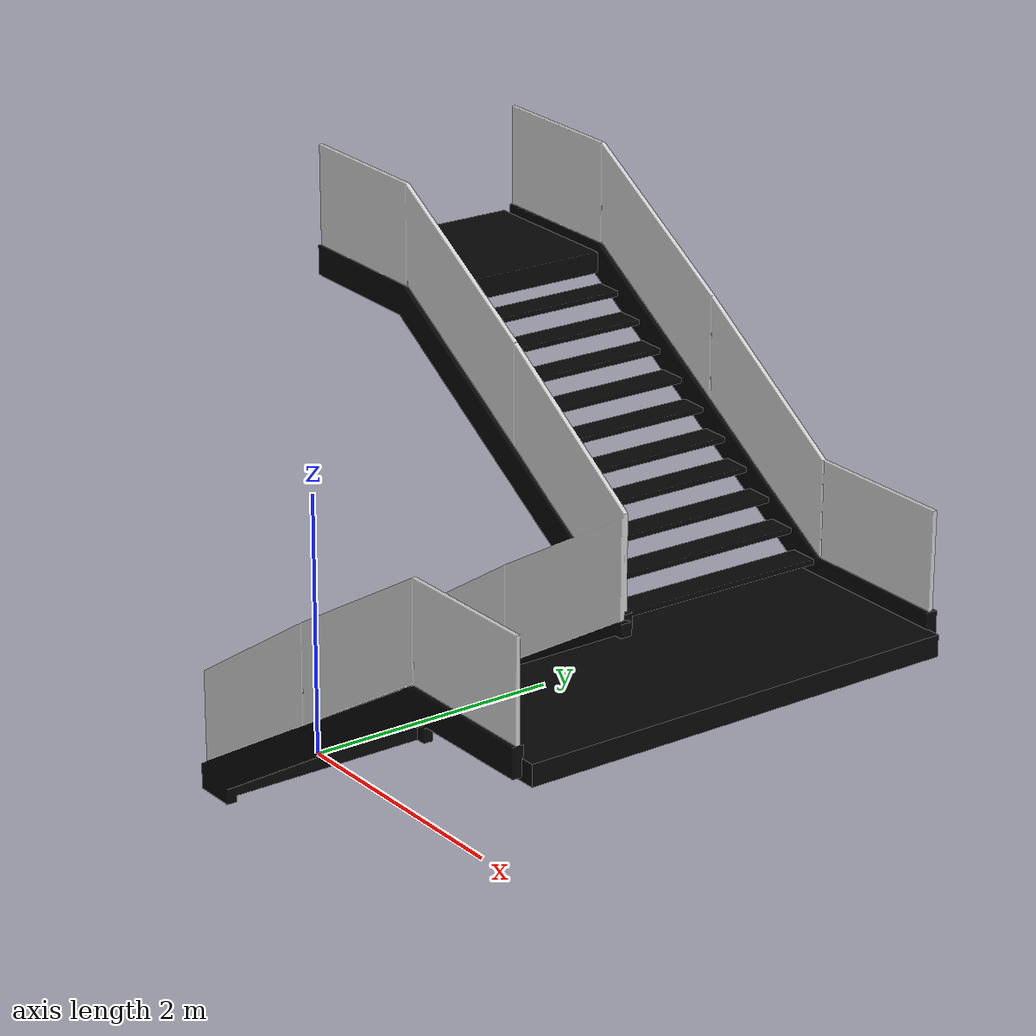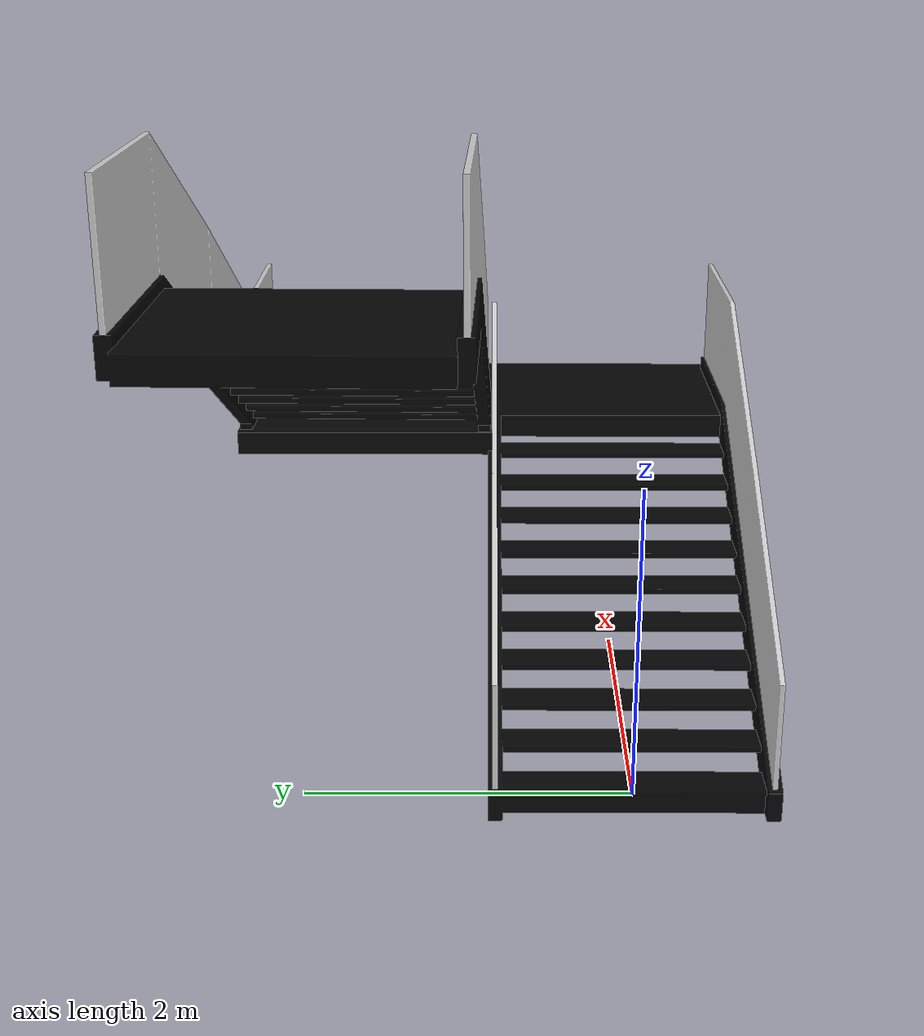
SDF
<?xml version='1.0'?>
<sdf version='1.6'>
  <model name='stairs'>
    <link name='link'>
      <pose frame=''>0 0 0 0 0 0</pose>
       <visual name='visual'>
        <pose frame=''>0 0 0 0 0 0</pose>
        <geometry>
          <mesh>
            <uri>model://stairs/meshes/stairs.dae</uri>
            <scale>0.8 0.8 0.8</scale>
          </mesh>
        </geometry>
        <cast_shadows>1</cast_shadows>
        <transparency>0</transparency>
      </visual>
      <collision name='collision'>
        <laser_retro>0</laser_retro>
        <max_contacts>10</max_contacts>
        <pose frame=''>0 0 0 0 -0 0</pose>
        <geometry>
          <mesh>
            <uri>model://stairs/meshes/stairs.dae</uri>
            <scale>0.8 0.8 0.8</scale>
          </mesh>
        </geometry>
        </collision>
    </link>
    <static>1</static>
    <allow_auto_disable>1</allow_auto_disable>
  </model>
</sdf>
